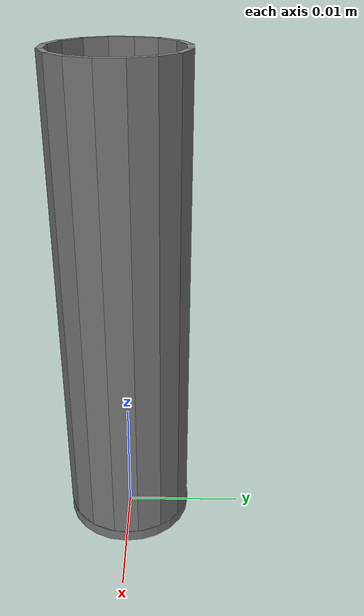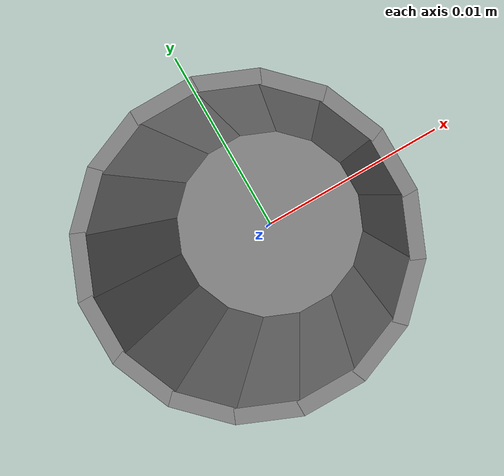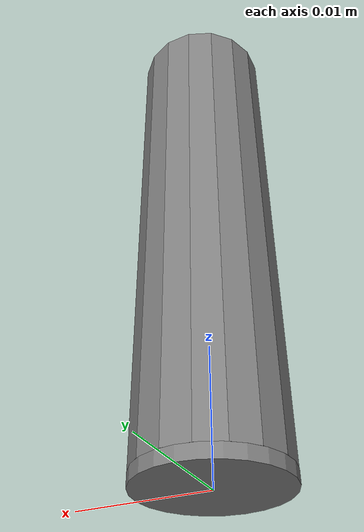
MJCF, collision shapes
<mujoco model="centrifuge_1500ul_no_lid">
  <compiler angle="radian" meshdir="../../assets/"/>

  <asset>
    <mesh name="centrifuge_1500ul_no_lid-visual_visual" file="container/centrifuge_1500ul_no_lid_vis/visual.obj" scale="0.001 0.001 0.001"/>
    <material name="centrifuge_1500ul_no_lid" rgba="1 1 1 0.2" />
  </asset>

  <worldbody>
    <body name="centrifuge_1500ul_no_lid">
      <geom size="0.00535 0.0005" pos="0 0 0.0005" type="cylinder" group="3"/>
      <geom type="mesh" contype="0" conaffinity="0" group="2" mesh="centrifuge_1500ul_no_lid-visual_visual" material="centrifuge_1500ul_no_lid"/>
      <frame>
        <geom size="0.00104373 0.000245196 0.0195" pos="0 0.005002 0.0205" type="box" group="3"/>
      </frame>
      <frame>
        <geom size="0.00104373 0.000245196 0.0195" pos="0.00191418 0.00462125 0.0205" quat="0.980785 0 0 -0.19509" type="box" group="3"/>
      </frame>
      <frame>
        <geom size="0.00104373 0.000245196 0.0195" pos="0.00353695 0.00353695 0.0205" quat="0.92388 0 0 -0.382683" type="box" group="3"/>
      </frame>
      <frame>
        <geom size="0.00104373 0.000245196 0.0195" pos="0.00462125 0.00191418 0.0205" quat="0.83147 0 0 -0.55557" type="box" group="3"/>
      </frame>
      <frame>
        <geom size="0.00104373 0.000245196 0.0195" pos="0.005002 0 0.0205" quat="0.707107 0 0 -0.707107" type="box" group="3"/>
      </frame>
      <frame>
        <geom size="0.00104373 0.000245196 0.0195" pos="0.00462125 -0.00191418 0.0205" quat="0.55557 0 0 -0.83147" type="box" group="3"/>
      </frame>
      <frame>
        <geom size="0.00104373 0.000245196 0.0195" pos="0.00353695 -0.00353695 0.0205" quat="0.382683 0 0 -0.92388" type="box" group="3"/>
      </frame>
      <frame>
        <geom size="0.00104373 0.000245196 0.0195" pos="0.00191418 -0.00462125 0.0205" quat="0.19509 0 0 -0.980785" type="box" group="3"/>
      </frame>
      <frame>
        <geom size="0.00104373 0.000245196 0.0195" pos="0 -0.005002 0.0205" quat="0 0 0 -1" type="box" group="3"/>
      </frame>
      <frame>
        <geom size="0.00104373 0.000245196 0.0195" pos="-0.00191418 -0.00462125 0.0205" quat="-0.19509 0 0 -0.980785" type="box" group="3"/>
      </frame>
      <frame>
        <geom size="0.00104373 0.000245196 0.0195" pos="-0.00353695 -0.00353695 0.0205" quat="-0.382683 0 0 -0.92388" type="box" group="3"/>
      </frame>
      <frame>
        <geom size="0.00104373 0.000245196 0.0195" pos="-0.00462125 -0.00191418 0.0205" quat="-0.55557 0 0 -0.83147" type="box" group="3"/>
      </frame>
      <frame>
        <geom size="0.00104373 0.000245196 0.0195" pos="-0.005002 0 0.0205" quat="-0.707107 0 0 -0.707107" type="box" group="3"/>
      </frame>
      <frame>
        <geom size="0.00104373 0.000245196 0.0195" pos="-0.00462125 0.00191418 0.0205" quat="-0.83147 0 0 -0.55557" type="box" group="3"/>
      </frame>
      <frame>
        <geom size="0.00104373 0.000245196 0.0195" pos="-0.00353695 0.00353695 0.0205" quat="-0.92388 0 0 -0.382683" type="box" group="3"/>
      </frame>
      <frame>
        <geom size="0.00104373 0.000245196 0.0195" pos="-0.00191418 0.00462125 0.0205" quat="-0.980785 0 0 -0.19509" type="box" group="3"/>
      </frame>
    </body>
  </worldbody>
</mujoco>
